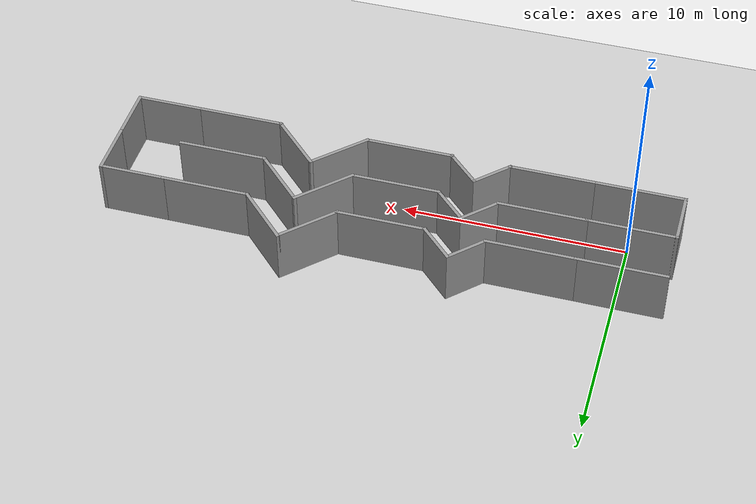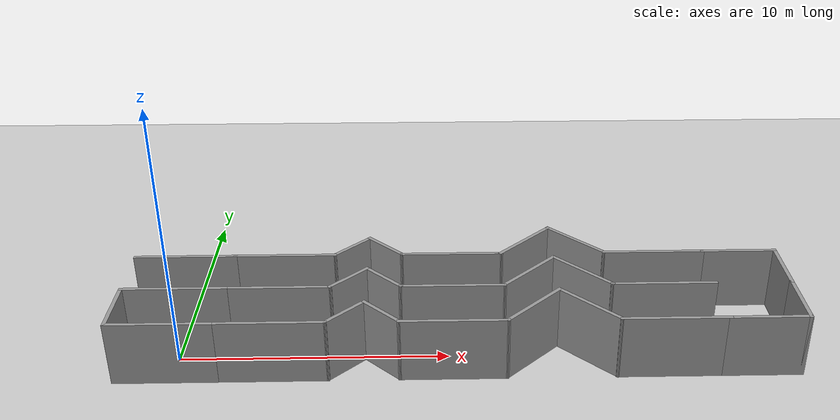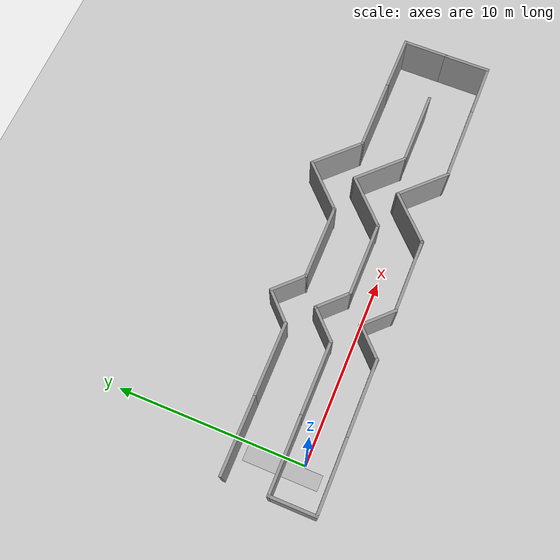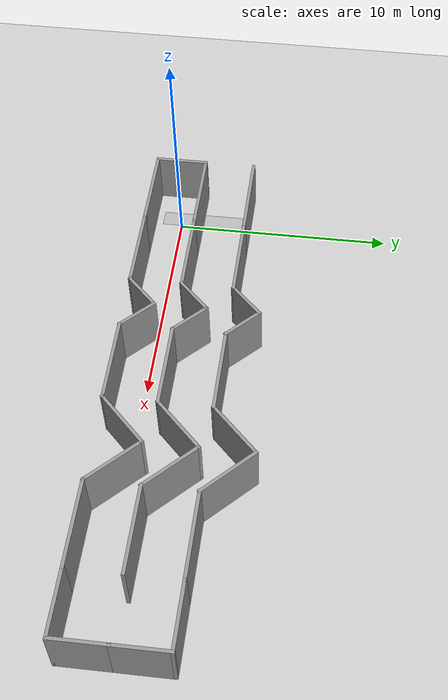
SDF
<sdf version="1.6">
 <world name="default">
  <light name="sun" type="directional">
   <pose>0 0 10 0 -0 0</pose>
   <diffuse>0.8 0.8 0.8 1</diffuse>
   <specular>0.1 0.1 0.1 1</specular>
   <attenuation>
    <range>1000</range>
    <constant>0.9</constant>
    <linear>0.01</linear>
    <quadratic>0.001</quadratic>
   </attenuation>
   <direction>-0.5 0.5 -1</direction>
  </light>
  <model name="ground_plane">
   <static>1</static>
   <link name="link">
    <collision name="collision">
     <geometry><plane><normal>0 0 1</normal><size>100 100</size></plane></geometry>
     <surface><friction><ode><mu>100</mu><mu2>50</mu2></ode></friction></surface>
    </collision>
    <visual name="visual">
     <cast_shadows>0</cast_shadows>
     <geometry><plane><normal>0 0 1</normal><size>100 100</size></plane></geometry>
     <material>
      <script><uri>file://media/materials/scripts/gazebo.material</uri><name>Gazebo/Grey</name></script>
     </material>
    </visual>
   </link>
  </model>
  <gravity>0 0 -9.8</gravity>
  <magnetic_field>6e-06 2.3e-05 -4.2e-05</magnetic_field>
  <atmosphere type="adiabatic"/>
  <physics name="default_physics" default="0" type="ode">
   <max_step_size>0.001</max_step_size>
   <real_time_factor>1</real_time_factor>
   <real_time_update_rate>1000</real_time_update_rate>
  </physics>
  <scene><ambient>0.4 0.4 0.4 1</ambient><background>0.7 0.7 0.7 1</background><shadows>1</shadows></scene>
  <spherical_coordinates>
   <surface_model>EARTH_WGS84</surface_model>
   <latitude_deg>0</latitude_deg>
   <longitude_deg>0</longitude_deg>
   <elevation>0</elevation>
   <heading_deg>0</heading_deg>
  </spherical_coordinates>
  <model name="smartcar_plane">
   <static>1</static>
   <link name="link">
    <collision name="collision">
     <geometry><box><size>0.8 3.9 0.001</size></box></geometry>
     <surface><friction><ode><mu>100</mu><mu2>50</mu2></ode></friction></surface>
    </collision>
    <visual name="visual">
     <geometry><box><size>0.8 3.9 0.001</size></box></geometry>
     <material>
      <script>
       <uri>model://smartcar_plane/materials/scripts</uri>
       <uri>model://smartcar_plane/materials/textures/</uri>
       <name>SmartcarPlane/Image</name>
      </script>
     </material>
    </visual>
   </link>
   <pose>-0.5 1 0 0 -0 0</pose>
  </model>
  <model name="2?">
   <pose>10.3578 2.00569 0 0 -0 0</pose>
   <link name="Wall_0">
    <collision name="Wall_0_Collision">
     <geometry><box><size>4 0.15 2.5</size></box></geometry>
     <pose>0 0 1.25 0 -0 0</pose>
    </collision>
    <visual name="Wall_0_Visual">
     <pose>0 0 1.25 0 -0 0</pose>
     <geometry><box><size>4 0.15 2.5</size></box></geometry>
     <material>
      <script><uri>file://media/materials/scripts/gazebo.material</uri><name>Gazebo/Grey</name></script>
      <ambient>1 1 1 1</ambient>
     </material>
     <meta><layer>0</layer></meta>
    </visual>
    <pose>-10.5234 -3.35763 0 0 -0 0</pose>
   </link>
   <link name="Wall_1">
    <collision name="Wall_1_Collision">
     <geometry><box><size>4 0.15 2.5</size></box></geometry>
     <pose>0 0 1.25 0 -0 0</pose>
    </collision>
    <visual name="Wall_1_Visual">
     <pose>0 0 1.25 0 -0 0</pose>
     <geometry><box><size>4 0.15 2.5</size></box></geometry>
     <material>
      <script><uri>file://media/materials/scripts/gazebo.material</uri><name>Gazebo/Grey</name></script>
      <ambient>1 1 1 1</ambient>
     </material>
     <meta><layer>0</layer></meta>
    </visual>
    <pose>-6.6734 -3.35763 0 0 -0 0</pose>
   </link>
   <link name="Wall_10">
    <collision name="Wall_10_Collision">
     <geometry><box><size>3 0.15 2.5</size></box></geometry>
     <pose>0 0 1.25 0 -0 0</pose>
    </collision>
    <visual name="Wall_10_Visual">
     <pose>0 0 1.25 0 -0 0</pose>
     <geometry><box><size>3 0.15 2.5</size></box></geometry>
     <material>
      <script><uri>file://media/materials/scripts/gazebo.material</uri><name>Gazebo/Grey</name></script>
      <ambient>1 1 1 1</ambient>
     </material>
     <meta><layer>0</layer></meta>
    </visual>
    <pose>4.74077 -2.35 0 0 0 -0.785398</pose>
   </link>
   <link name="Wall_11">
    <collision name="Wall_11_Collision">
     <geometry><box><size>4 0.15 2.5</size></box></geometry>
     <pose>0 0 1.25 0 -0 0</pose>
    </collision>
    <visual name="Wall_11_Visual">
     <pose>0 0 1.25 0 -0 0</pose>
     <geometry><box><size>4 0.15 2.5</size></box></geometry>
     <material>
      <script><uri>file://media/materials/scripts/gazebo.material</uri><name>Gazebo/Grey</name></script>
      <ambient>1 1 1 1</ambient>
     </material>
     <meta><layer>0</layer></meta>
    </visual>
    <pose>7.6734 -3.35763 0 0 -0 0</pose>
   </link>
   <link name="Wall_12">
    <collision name="Wall_12_Collision">
     <geometry><box><size>3 0.15 2.5</size></box></geometry>
     <pose>0 0 1.25 0 -0 0</pose>
    </collision>
    <visual name="Wall_12_Visual">
     <pose>0 0 1.25 0 -0 0</pose>
     <geometry><box><size>3 0.15 2.5</size></box></geometry>
     <material>
      <script><uri>file://media/materials/scripts/gazebo.material</uri><name>Gazebo/Grey</name></script>
      <ambient>1 1 1 1</ambient>
     </material>
     <meta><layer>0</layer></meta>
    </visual>
    <pose>11.0234 -3.35763 0 0 -0 0</pose>
   </link>
   <link name="Wall_13">
    <collision name="Wall_13_Collision">
     <geometry><box><size>2.5 0.15 2.5</size></box></geometry>
     <pose>0 0 1.25 0 -0 0</pose>
    </collision>
    <visual name="Wall_13_Visual">
     <pose>0 0 1.25 0 -0 0</pose>
     <geometry><box><size>2.5 0.15 2.5</size></box></geometry>
     <material>
      <script><uri>file://media/materials/scripts/gazebo.material</uri><name>Gazebo/Grey</name></script>
      <ambient>1 1 1 1</ambient>
     </material>
     <meta><layer>0</layer></meta>
    </visual>
    <pose>12.4484 -2.18263 0 0 -0 1.5708</pose>
   </link>
   <link name="Wall_14">
    <collision name="Wall_14_Collision">
     <geometry><box><size>2.5 0.15 2.5</size></box></geometry>
     <pose>0 0 1.25 0 -0 0</pose>
    </collision>
    <visual name="Wall_14_Visual">
     <pose>0 0 1.25 0 -0 0</pose>
     <geometry><box><size>2.5 0.15 2.5</size></box></geometry>
     <material>
      <script><uri>file://media/materials/scripts/gazebo.material</uri><name>Gazebo/Grey</name></script>
      <ambient>1 1 1 1</ambient>
     </material>
     <meta><layer>0</layer></meta>
    </visual>
    <pose>12.4484 0.167373 0 0 -0 1.5708</pose>
   </link>
   <link name="Wall_15">
    <collision name="Wall_15_Collision">
     <geometry><box><size>3 0.15 2.5</size></box></geometry>
     <pose>0 0 1.25 0 -0 0</pose>
    </collision>
    <visual name="Wall_15_Visual">
     <pose>0 0 1.25 0 -0 0</pose>
     <geometry><box><size>3 0.15 2.5</size></box></geometry>
     <material>
      <script><uri>file://media/materials/scripts/gazebo.material</uri><name>Gazebo/Grey</name></script>
      <ambient>1 1 1 1</ambient>
     </material>
     <meta><layer>0</layer></meta>
    </visual>
    <pose>11.0234 1.34237 0 0 -0 3.14159</pose>
   </link>
   <link name="Wall_16">
    <collision name="Wall_16_Collision">
     <geometry><box><size>4 0.15 2.5</size></box></geometry>
     <pose>0 0 1.25 0 -0 0</pose>
    </collision>
    <visual name="Wall_16_Visual">
     <pose>0 0 1.25 0 -0 0</pose>
     <geometry><box><size>4 0.15 2.5</size></box></geometry>
     <material>
      <script><uri>file://media/materials/scripts/gazebo.material</uri><name>Gazebo/Grey</name></script>
      <ambient>1 1 1 1</ambient>
     </material>
     <meta><layer>0</layer></meta>
    </visual>
    <pose>7.6734 1.34237 0 0 -0 3.14159</pose>
   </link>
   <link name="Wall_17">
    <collision name="Wall_17_Collision">
     <geometry><box><size>3 0.15 2.5</size></box></geometry>
     <pose>0 0 1.25 0 -0 0</pose>
    </collision>
    <visual name="Wall_17_Visual">
     <pose>0 0 1.25 0 -0 0</pose>
     <geometry><box><size>3 0.15 2.5</size></box></geometry>
     <material>
      <script><uri>file://media/materials/scripts/gazebo.material</uri><name>Gazebo/Grey</name></script>
      <ambient>1 1 1 1</ambient>
     </material>
     <meta><layer>0</layer></meta>
    </visual>
    <pose>4.74077 2.35 0 0 -0 2.35619</pose>
   </link>
   <link name="Wall_18">
    <collision name="Wall_18_Collision">
     <geometry><box><size>3 0.15 2.5</size></box></geometry>
     <pose>0 0 1.25 0 -0 0</pose>
    </collision>
    <visual name="Wall_18_Visual">
     <pose>0 0 1.25 0 -0 0</pose>
     <geometry><box><size>3 0.15 2.5</size></box></geometry>
     <material>
      <script><uri>file://media/materials/scripts/gazebo.material</uri><name>Gazebo/Grey</name></script>
      <ambient>1 1 1 1</ambient>
     </material>
     <meta><layer>0</layer></meta>
    </visual>
    <pose>2.72552 2.35 0 0 0 -2.35619</pose>
   </link>
   <link name="Wall_19">
    <collision name="Wall_19_Collision">
     <geometry><box><size>4 0.15 2.5</size></box></geometry>
     <pose>0 0 1.25 0 -0 0</pose>
    </collision>
    <visual name="Wall_19_Visual">
     <pose>0 0 1.25 0 -0 0</pose>
     <geometry><box><size>4 0.15 2.5</size></box></geometry>
     <material>
      <script><uri>file://media/materials/scripts/gazebo.material</uri><name>Gazebo/Grey</name></script>
      <ambient>1 1 1 1</ambient>
     </material>
     <meta><layer>0</layer></meta>
    </visual>
    <pose>-0.207107 1.34237 0 0 -0 3.14159</pose>
   </link>
   <link name="Wall_2">
    <collision name="Wall_2_Collision">
     <geometry><box><size>2 0.15 2.5</size></box></geometry>
     <pose>0 0 1.25 0 -0 0</pose>
    </collision>
    <visual name="Wall_2_Visual">
     <pose>0 0 1.25 0 -0 0</pose>
     <geometry><box><size>2 0.15 2.5</size></box></geometry>
     <material>
      <script><uri>file://media/materials/scripts/gazebo.material</uri><name>Gazebo/Grey</name></script>
      <ambient>1 1 1 1</ambient>
     </material>
     <meta><layer>0</layer></meta>
    </visual>
    <pose>-4.09433 -2.70355 0 0 -0 0.785398</pose>
   </link>
   <link name="Wall_20">
    <collision name="Wall_20_Collision">
     <geometry><box><size>2 0.15 2.5</size></box></geometry>
     <pose>0 0 1.25 0 -0 0</pose>
    </collision>
    <visual name="Wall_20_Visual">
     <pose>0 0 1.25 0 -0 0</pose>
     <geometry><box><size>2 0.15 2.5</size></box></geometry>
     <material>
      <script><uri>file://media/materials/scripts/gazebo.material</uri><name>Gazebo/Grey</name></script>
      <ambient>1 1 1 1</ambient>
     </material>
     <meta><layer>0</layer></meta>
    </visual>
    <pose>-2.78618 1.99645 0 0 -0 2.35619</pose>
   </link>
   <link name="Wall_21">
    <collision name="Wall_21_Collision">
     <geometry><box><size>2 0.15 2.5</size></box></geometry>
     <pose>0 0 1.25 0 -0 0</pose>
    </collision>
    <visual name="Wall_21_Visual">
     <pose>0 0 1.25 0 -0 0</pose>
     <geometry><box><size>2 0.15 2.5</size></box></geometry>
     <material>
      <script><uri>file://media/materials/scripts/gazebo.material</uri><name>Gazebo/Grey</name></script>
      <ambient>1 1 1 1</ambient>
     </material>
     <meta><layer>0</layer></meta>
    </visual>
    <pose>-4.09433 1.99645 0 0 0 -2.35619</pose>
   </link>
   <link name="Wall_22">
    <collision name="Wall_22_Collision">
     <geometry><box><size>4 0.15 2.5</size></box></geometry>
     <pose>0 0 1.25 0 -0 0</pose>
    </collision>
    <visual name="Wall_22_Visual">
     <pose>0 0 1.25 0 -0 0</pose>
     <geometry><box><size>4 0.15 2.5</size></box></geometry>
     <material>
      <script><uri>file://media/materials/scripts/gazebo.material</uri><name>Gazebo/Grey</name></script>
      <ambient>1 1 1 1</ambient>
     </material>
     <meta><layer>0</layer></meta>
    </visual>
    <pose>-6.6734 1.34237 0 0 -0 3.14159</pose>
   </link>
   <link name="Wall_23">
    <collision name="Wall_23_Collision">
     <geometry><box><size>4 0.15 2.5</size></box></geometry>
     <pose>0 0 1.25 0 -0 0</pose>
    </collision>
    <visual name="Wall_23_Visual">
     <pose>0 0 1.25 0 -0 0</pose>
     <geometry><box><size>4 0.15 2.5</size></box></geometry>
     <material>
      <script><uri>file://media/materials/scripts/gazebo.material</uri><name>Gazebo/Grey</name></script>
      <ambient>1 1 1 1</ambient>
     </material>
     <meta><layer>0</layer></meta>
    </visual>
    <pose>-10.5234 1.34237 0 0 -0 3.14159</pose>
   </link>
   <link name="Wall_25">
    <collision name="Wall_25_Collision">
     <geometry><box><size>2.5 0.15 2.5</size></box></geometry>
     <pose>0 0 1.25 0 -0 0</pose>
    </collision>
    <visual name="Wall_25_Visual">
     <pose>0 0 1.25 0 -0 0</pose>
     <geometry><box><size>2.5 0.15 2.5</size></box></geometry>
     <material>
      <script><uri>file://media/materials/scripts/gazebo.material</uri><name>Gazebo/Grey</name></script>
      <ambient>1 1 1 1</ambient>
     </material>
     <meta><layer>0</layer></meta>
    </visual>
    <pose>-12.4484 -2.18263 0 0 0 -1.5708</pose>
   </link>
   <link name="Wall_27">
    <collision name="Wall_27_Collision">
     <geometry><box><size>4 0.15 2.5</size></box></geometry>
     <pose>0 0 1.25 0 -0 0</pose>
    </collision>
    <visual name="Wall_27_Visual">
     <pose>0 0 1.25 0 -0 0</pose>
     <geometry><box><size>4 0.15 2.5</size></box></geometry>
     <material>
      <script><uri>file://media/materials/scripts/gazebo.material</uri><name>Gazebo/Grey</name></script>
      <ambient>1 1 1 1</ambient>
     </material>
     <meta><layer>0</layer></meta>
    </visual>
    <pose>-10.5234 -1.00763 0 0 -0 0</pose>
   </link>
   <link name="Wall_28">
    <collision name="Wall_28_Collision">
     <geometry><box><size>4 0.15 2.5</size></box></geometry>
     <pose>0 0 1.25 0 -0 0</pose>
    </collision>
    <visual name="Wall_28_Visual">
     <pose>0 0 1.25 0 -0 0</pose>
     <geometry><box><size>4 0.15 2.5</size></box></geometry>
     <material>
      <script><uri>file://media/materials/scripts/gazebo.material</uri><name>Gazebo/Grey</name></script>
      <ambient>1 1 1 1</ambient>
     </material>
     <meta><layer>0</layer></meta>
    </visual>
    <pose>-6.6734 -1.00763 0 0 -0 0</pose>
   </link>
   <link name="Wall_29">
    <collision name="Wall_29_Collision">
     <geometry><box><size>2 0.15 2.5</size></box></geometry>
     <pose>0 0 1.25 0 -0 0</pose>
    </collision>
    <visual name="Wall_29_Visual">
     <pose>0 0 1.25 0 -0 0</pose>
     <geometry><box><size>2 0.15 2.5</size></box></geometry>
     <material>
      <script><uri>file://media/materials/scripts/gazebo.material</uri><name>Gazebo/Grey</name></script>
      <ambient>1 1 1 1</ambient>
     </material>
     <meta><layer>0</layer></meta>
    </visual>
    <pose>-4.09433 -0.353554 0 0 -0 0.785398</pose>
   </link>
   <link name="Wall_3">
    <collision name="Wall_3_Collision">
     <geometry><box><size>2 0.15 2.5</size></box></geometry>
     <pose>0 0 1.25 0 -0 0</pose>
    </collision>
    <visual name="Wall_3_Visual">
     <pose>0 0 1.25 0 -0 0</pose>
     <geometry><box><size>2 0.15 2.5</size></box></geometry>
     <material>
      <script><uri>file://media/materials/scripts/gazebo.material</uri><name>Gazebo/Grey</name></script>
      <ambient>1 1 1 1</ambient>
     </material>
     <meta><layer>0</layer></meta>
    </visual>
    <pose>-2.78618 -2.70355 0 0 0 -0.785398</pose>
   </link>
   <link name="Wall_30">
    <collision name="Wall_30_Collision">
     <geometry><box><size>2 0.15 2.5</size></box></geometry>
     <pose>0 0 1.25 0 -0 0</pose>
    </collision>
    <visual name="Wall_30_Visual">
     <pose>0 0 1.25 0 -0 0</pose>
     <geometry><box><size>2 0.15 2.5</size></box></geometry>
     <material>
      <script><uri>file://media/materials/scripts/gazebo.material</uri><name>Gazebo/Grey</name></script>
      <ambient>1 1 1 1</ambient>
     </material>
     <meta><layer>0</layer></meta>
    </visual>
    <pose>-2.78618 -0.353554 0 0 0 -0.785398</pose>
   </link>
   <link name="Wall_31">
    <collision name="Wall_31_Collision">
     <geometry><box><size>4 0.15 2.5</size></box></geometry>
     <pose>0 0 1.25 0 -0 0</pose>
    </collision>
    <visual name="Wall_31_Visual">
     <pose>0 0 1.25 0 -0 0</pose>
     <geometry><box><size>4 0.15 2.5</size></box></geometry>
     <material>
      <script><uri>file://media/materials/scripts/gazebo.material</uri><name>Gazebo/Grey</name></script>
      <ambient>1 1 1 1</ambient>
     </material>
     <meta><layer>0</layer></meta>
    </visual>
    <pose>-0.207107 -1.00763 0 0 -0 0</pose>
   </link>
   <link name="Wall_32">
    <collision name="Wall_32_Collision">
     <geometry><box><size>3 0.15 2.5</size></box></geometry>
     <pose>0 0 1.25 0 -0 0</pose>
    </collision>
    <visual name="Wall_32_Visual">
     <pose>0 0 1.25 0 -0 0</pose>
     <geometry><box><size>3 0.15 2.5</size></box></geometry>
     <material>
      <script><uri>file://media/materials/scripts/gazebo.material</uri><name>Gazebo/Grey</name></script>
      <ambient>1 1 1 1</ambient>
     </material>
     <meta><layer>0</layer></meta>
    </visual>
    <pose>2.72552 0 0 0 -0 0.785398</pose>
   </link>
   <link name="Wall_33">
    <collision name="Wall_33_Collision">
     <geometry><box><size>3 0.15 2.5</size></box></geometry>
     <pose>0 0 1.25 0 -0 0</pose>
    </collision>
    <visual name="Wall_33_Visual">
     <pose>0 0 1.25 0 -0 0</pose>
     <geometry><box><size>3 0.15 2.5</size></box></geometry>
     <material>
      <script><uri>file://media/materials/scripts/gazebo.material</uri><name>Gazebo/Grey</name></script>
      <ambient>1 1 1 1</ambient>
     </material>
     <meta><layer>0</layer></meta>
    </visual>
    <pose>4.74077 0 0 0 0 -0.785398</pose>
   </link>
   <link name="Wall_34">
    <collision name="Wall_34_Collision">
     <geometry><box><size>4 0.15 2.5</size></box></geometry>
     <pose>0 0 1.25 0 -0 0</pose>
    </collision>
    <visual name="Wall_34_Visual">
     <pose>0 0 1.25 0 -0 0</pose>
     <geometry><box><size>4 0.15 2.5</size></box></geometry>
     <material>
      <script><uri>file://media/materials/scripts/gazebo.material</uri><name>Gazebo/Grey</name></script>
      <ambient>1 1 1 1</ambient>
     </material>
     <meta><layer>0</layer></meta>
    </visual>
    <pose>7.6734 -1.00763 0 0 -0 0</pose>
   </link>
   <link name="Wall_5">
    <collision name="Wall_5_Collision">
     <geometry><box><size>4 0.15 2.5</size></box></geometry>
     <pose>0 0 1.25 0 -0 0</pose>
    </collision>
    <visual name="Wall_5_Visual">
     <pose>0 0 1.25 0 -0 0</pose>
     <geometry><box><size>4 0.15 2.5</size></box></geometry>
     <material>
      <script><uri>file://media/materials/scripts/gazebo.material</uri><name>Gazebo/Grey</name></script>
      <ambient>1 1 1 1</ambient>
     </material>
     <meta><layer>0</layer></meta>
    </visual>
    <pose>-0.207107 -3.35763 0 0 -0 0</pose>
   </link>
   <link name="Wall_9">
    <collision name="Wall_9_Collision">
     <geometry><box><size>3 0.15 2.5</size></box></geometry>
     <pose>0 0 1.25 0 -0 0</pose>
    </collision>
    <visual name="Wall_9_Visual">
     <pose>0 0 1.25 0 -0 0</pose>
     <geometry><box><size>3 0.15 2.5</size></box></geometry>
     <material>
      <script><uri>file://media/materials/scripts/gazebo.material</uri><name>Gazebo/Grey</name></script>
      <ambient>1 1 1 1</ambient>
     </material>
     <meta><layer>0</layer></meta>
    </visual>
    <pose>2.72552 -2.35 0 0 -0 0.785398</pose>
   </link>
   <static>1</static>
  </model>
  <audio><device>default</device></audio>
 </world>
</sdf>
